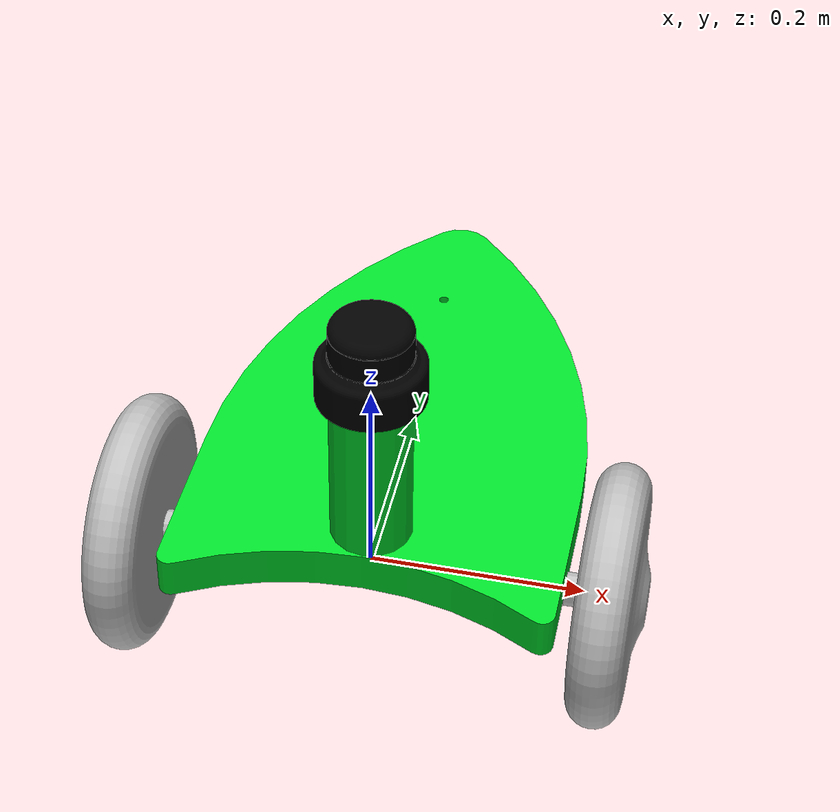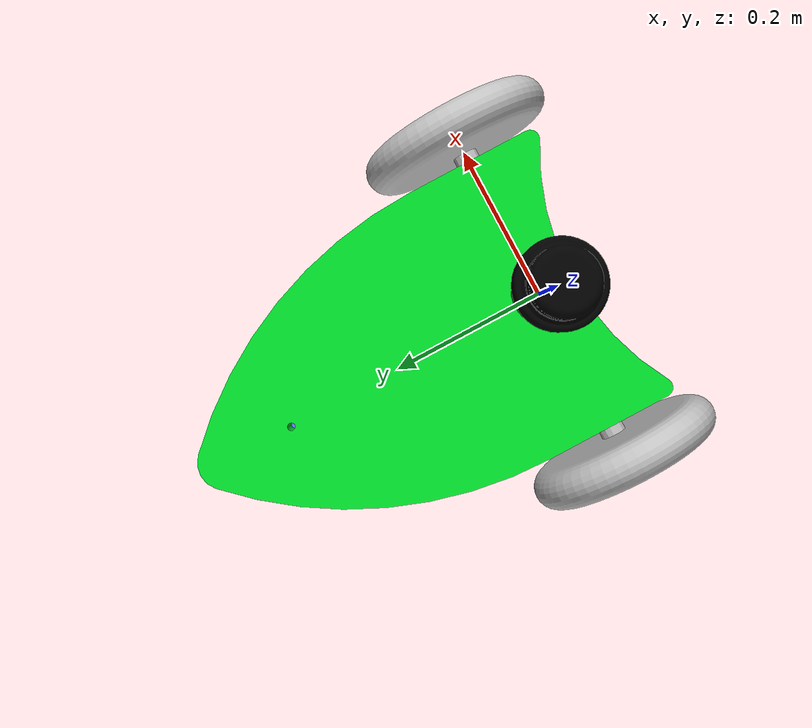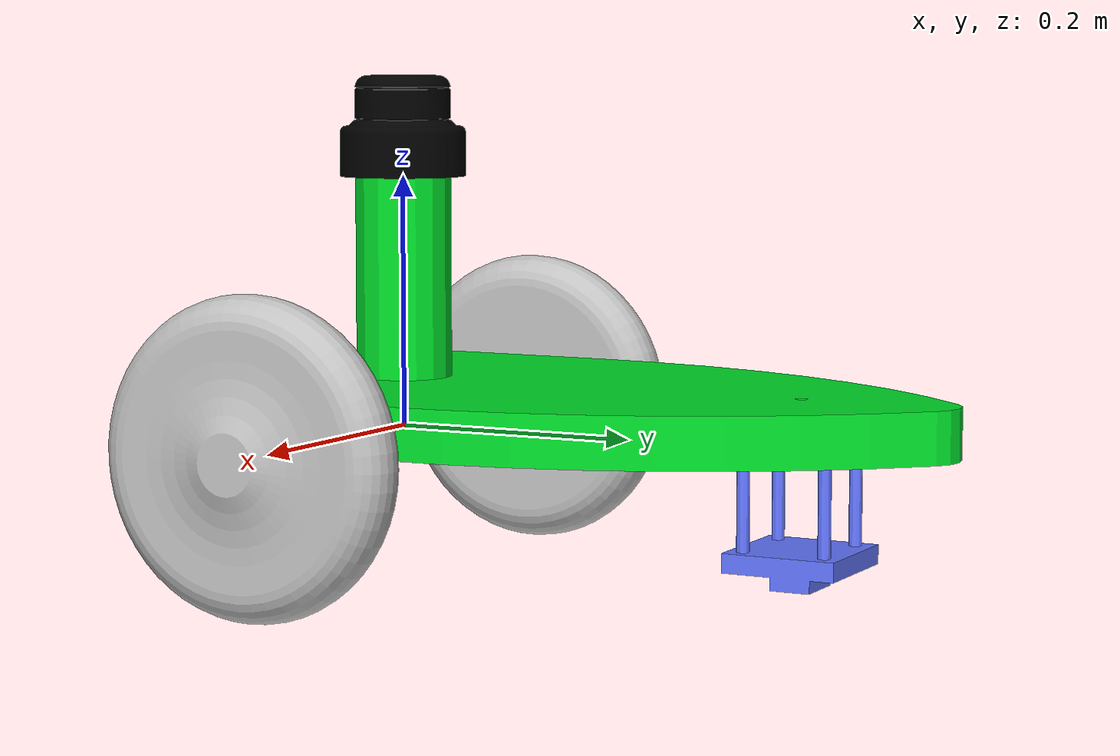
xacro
<?xml version="1.0" encoding="utf-8"?>
<robot   name="robotfin" xmlns:xacro="http://www.ros.org/wiki/xacro">
  <xacro:include filename="$(find robotfin)/src/robotfin_description/urdf/robots.gazebo.xacro" />
 <link
    name="base_link">
    <inertial>
      <origin
        xyz="2.7808E-17 0.030757 -0.14283"
        rpy="0 0 0" />
      <mass
        value="6.851" />
      <inertia
        ixx="0.13782"
        ixy="-9.7947E-18"
        ixz="-3.7627E-17"
        iyy="0.18627"
        iyz="-0.010532"
        izz="0.06655" />
    </inertial>
    <visual>
      <origin
        xyz="0 0 0"
        rpy="0 0 0" />
      <geometry>
        <mesh
          filename="package://robotfin/src/robotfin_description/meshes/base_link.STL" />
      </geometry>
      <material
        name="">
        <color
          rgba="0 0.87843 0.16471 1" />
      </material>
    </visual>
    <collision>
      <origin
        xyz="0 0 0"
        rpy="0 0 0" />
      <geometry>
        <mesh
          filename="package://robotfin/src/robotfin_description/meshes/base_link.STL" />
      </geometry>
    </collision>
  </link>
  <link
    name="Lidar_Link">
    <inertial>
      <origin
        xyz="-2.0279E-17 6.3357E-17 0.034217"
        rpy="0 0 0" />
      <mass
        value="0.49143" />
      <inertia
        ixx="0.00049933"
        ixy="-5.421E-20"
        ixz="4.3436E-22"
        iyy="0.00049933"
        iyz="-1.8845E-20"
        izz="0.00051729" />
    </inertial>
    <visual>
      <origin
        xyz="0 0 0"
        rpy="0 0 0" />
      <geometry>
        <mesh
          filename="package://robotfin/src/robotfin_description/meshes/Lidar_Link.STL" />
      </geometry>
      <material
        name="">
        <color
          rgba="0 0 0 1" />
      </material>
    </visual>
    <collision>
      <origin
        xyz="0 0 0"
        rpy="0 0 0" />
      <geometry>
        <mesh
          filename="package://robotfin/src/robotfin_description/meshes/Lidar_Link.STL" />
      </geometry>
    </collision>
  </link>
  <joint
    name="lidar_link"
    type="fixed">
    <origin
      xyz="0 0 0.2"
      rpy="0 0 0.90255" />
    <parent
      link="base_link" />
    <child
      link="Lidar_Link" />
    <axis
      xyz="0 0 0" />
  </joint>
  <link
    name="Small_Link">
    <inertial>
      <origin
        xyz="2.6116E-05 4.3526E-05 0.0027613"
        rpy="0 0 0" />
      <mass
        value="0.16218" />
      <inertia
        ixx="0.00016614"
        ixy="-1.8385E-07"
        ixz="1.6735E-07"
        iyy="0.00016769"
        iyz="2.7891E-07"
        izz="0.00021729" />
    </inertial>
    <visual>
      <origin
        xyz="0 0 0"
        rpy="0 0 0" />
      <geometry>
        <mesh
          filename="package://robotfin/src/robotfin_description/meshes/Small_Link.STL" />
      </geometry>
      <material
        name="">
        <color
          rgba="0.38431 0.46275 1 1" />
      </material>
    </visual>
    <collision>
      <origin
        xyz="0 0 0"
        rpy="0 0 0" />
      <geometry>
        <mesh
          filename="package://robotfin/src/robotfin_description/meshes/Small_Link.STL" />
      </geometry>
    </collision>
  </link>
  <joint
    name="small_link"
    type="fixed">
    <origin
      xyz="0 0.345 -0.0735"
      rpy="3.1416 0 0" />
    <parent
      link="base_link" />
    <child
      link="Small_Link" />
    <axis
      xyz="0 0 0" />
  </joint>
  <link
    name="Right_Wheel_Link">
    <inertial>
      <origin
        xyz="-0.083443 -2.8144E-18 2.6753E-18"
        rpy="0 0 0" />
      <mass
        value="2.2321" />
      <inertia
        ixx="0.015051"
        ixy="1.4074E-18"
        ixz="-4.0181E-19"
        iyy="0.0080121"
        iyz="5.421E-19"
        izz="0.0080121" />
    </inertial>
    <visual>
      <origin
        xyz="0 0 0"
        rpy="0 0 0" />
      <geometry>
        <mesh
          filename="package://robotfin/src/robotfin_description/meshes/Right_Wheel_Link.STL" />
      </geometry>
      <material
        name="">
        <color
          rgba="0.75294 0.75294 0.75294 1" />
      </material>
    </visual>
    <collision>
      <origin
        xyz="0 0 0"
        rpy="0 0 0" />
      <geometry>
        <mesh
          filename="package://robotfin/src/robotfin_description/meshes/Right_Wheel_Link.STL" />
      </geometry>
    </collision>
  </link>
  <joint
    name="right_link"
    type="continuous">
    <origin
      xyz="0.1395 0 0"
      rpy="2.9765 0 3.1416" />
    <parent
      link="base_link" />
    <child
      link="Right_Wheel_Link" />
    <axis
      xyz="1 0 0" />
  </joint>
  <link
    name="Left_Wheel_Link">
    <inertial>
      <origin
        xyz="-0.083443 6.0144E-17 -1.6209E-17"
        rpy="0 0 0" />
      <mass
        value="2.2321" />
      <inertia
        ixx="0.015051"
        ixy="-7.1487E-19"
        ixz="8.2622E-19"
        iyy="0.0080121"
        iyz="-1.0842E-18"
        izz="0.0080121" />
    </inertial>
    <visual>
      <origin
        xyz="0 0 0"
        rpy="0 0 0" />
      <geometry>
        <mesh
          filename="package://robotfin/src/robotfin_description/meshes/Left_Wheel_Link.STL" />
      </geometry>
      <material
        name="">
        <color
          rgba="0.75294 0.75294 0.75294 1" />
      </material>
    </visual>
    <collision>
      <origin
        xyz="0 0 0"
        rpy="0 0 0" />
      <geometry>
        <mesh
          filename="package://robotfin/src/robotfin_description/meshes/Left_Wheel_Link.STL" />
      </geometry>
    </collision>
  </link>
  <joint
    name="left_link"
    type="continuous">
    <origin
      xyz="-0.1395 0 0"
      rpy="-2.1829 0 0" />
    <parent
      link="base_link" />
    <child
      link="Left_Wheel_Link" />
    <axis
      xyz="1 0 0" />
  </joint>
  <transmission name="tran1">
    <type>transmission_interface/SimpleTransmission</type>
    <joint name="left_link">
      <hardwareInterface>EffortJointInterface</hardwareInterface>
    </joint>
    <actuator name="motor1">
      <hardwareInterface>EffortJointInterface</hardwareInterface>
      <mechanicalReduction>1</mechanicalReduction>
    </actuator>
  </transmission>
  <transmission name="tran2">
    <type>transmission_interface/SimpleTransmission</type>
    <joint name="right_link">
      <hardwareInterface>EffortJointInterface</hardwareInterface>
    </joint>
    <actuator name="motor2">
      <hardwareInterface>EffortJointInterface</hardwareInterface>
      <mechanicalReduction>1</mechanicalReduction>
    </actuator>
  </transmission>
</robot>
